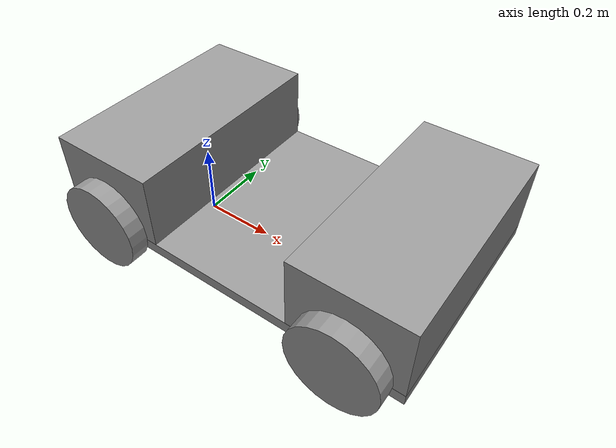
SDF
<?xml version='1.0'?>
<sdf version='1.6'>
  <model name='model3'>
    <link name='link_1'>
      <inertial>
        <mass>1</mass>
        <inertia>
          <ixx>0.166667</ixx>
          <ixy>0</ixy>
          <ixz>0</ixz>
          <iyy>0.166667</iyy>
          <iyz>0</iyz>
          <izz>0.166667</izz>
        </inertia>
        <pose frame=''>0 0 0 0 -0 0</pose>
      </inertial>
      <pose frame=''>0.285648 0.004706 0.118273 0 -0 0</pose>
      <gravity>1</gravity>
      <self_collide>0</self_collide>
      <kinematic>0</kinematic>
      <enable_wind>0</enable_wind>
      <visual name='visual'>
        <pose frame=''>0 0 0 0 -0 0</pose>
        <geometry>
          <box>
            <size>1 0.6 0.03</size>
          </box>
        </geometry>
        <material>
          <lighting>1</lighting>
          <script>
            <uri>file://media/materials/scripts/gazebo.material</uri>
            <name>Gazebo/Grey</name>
          </script>
          <shader type='vertex'>
            <normal_map>__default__</normal_map>
          </shader>
          <ambient>0.3 0.3 0.3 1</ambient>
          <diffuse>0.7 0.7 0.7 1</diffuse>
          <specular>0.01 0.01 0.01 1</specular>
          <emissive>0 0 0 1</emissive>
        </material>
        <transparency>0</transparency>
        <cast_shadows>1</cast_shadows>
      </visual>
      <collision name='collision'>
        <laser_retro>0</laser_retro>
        <max_contacts>10</max_contacts>
        <pose frame=''>0 0 0 0 -0 0</pose>
        <geometry>
          <box>
            <size>1 0.6 0.03</size>
          </box>
        </geometry>
        <surface>
          <friction>
            <ode>
              <mu>1</mu>
              <mu2>1</mu2>
              <fdir1>0 0 0</fdir1>
              <slip1>0</slip1>
              <slip2>0</slip2>
            </ode>
            <torsional>
              <coefficient>1</coefficient>
              <patch_radius>0</patch_radius>
              <surface_radius>0</surface_radius>
              <use_patch_radius>1</use_patch_radius>
              <ode>
                <slip>0</slip>
              </ode>
            </torsional>
          </friction>
          <bounce>
            <restitution_coefficient>0</restitution_coefficient>
            <threshold>1e+06</threshold>
          </bounce>
          <contact>
            <collide_without_contact>0</collide_without_contact>
            <collide_without_contact_bitmask>1</collide_without_contact_bitmask>
            <collide_bitmask>1</collide_bitmask>
            <ode>
              <soft_cfm>0</soft_cfm>
              <soft_erp>0.2</soft_erp>
              <kp>1e+13</kp>
              <kd>1</kd>
              <max_vel>0.01</max_vel>
              <min_depth>0</min_depth>
            </ode>
            <bullet>
              <split_impulse>1</split_impulse>
              <split_impulse_penetration_threshold>-0.01</split_impulse_penetration_threshold>
              <soft_cfm>0</soft_cfm>
              <soft_erp>0.2</soft_erp>
              <kp>1e+13</kp>
              <kd>1</kd>
            </bullet>
          </contact>
        </surface>
      </collision>
    </link>
    <link name='link_2'>
      <inertial>
        <mass>1</mass>
        <inertia>
          <ixx>0.166667</ixx>
          <ixy>0</ixy>
          <ixz>0</ixz>
          <iyy>0.166667</iyy>
          <iyz>0</iyz>
          <izz>0.166667</izz>
        </inertia>
        <pose frame=''>0 0 0 0 -0 0</pose>
      </inertial>
      <pose frame=''>-0.064352 0.004706 0.233273 0 -0 0</pose>
      <gravity>1</gravity>
      <self_collide>0</self_collide>
      <kinematic>0</kinematic>
      <enable_wind>0</enable_wind>
      <visual name='visual'>
        <pose frame=''>0 0 0 0 -0 0</pose>
        <geometry>
          <box>
            <size>0.3 0.6 0.2</size>
          </box>
        </geometry>
        <material>
          <lighting>1</lighting>
          <script>
            <uri>file://media/materials/scripts/gazebo.material</uri>
            <name>Gazebo/Grey</name>
          </script>
          <shader type='vertex'>
            <normal_map>__default__</normal_map>
          </shader>
          <ambient>0.3 0.3 0.3 1</ambient>
          <diffuse>0.7 0.7 0.7 1</diffuse>
          <specular>0.01 0.01 0.01 1</specular>
          <emissive>0 0 0 1</emissive>
        </material>
        <transparency>0</transparency>
        <cast_shadows>1</cast_shadows>
      </visual>
      <collision name='collision'>
        <laser_retro>0</laser_retro>
        <max_contacts>10</max_contacts>
        <pose frame=''>0 0 0 0 -0 0</pose>
        <geometry>
          <box>
            <size>0.3 0.6 0.2</size>
          </box>
        </geometry>
        <surface>
          <friction>
            <ode>
              <mu>1</mu>
              <mu2>1</mu2>
              <fdir1>0 0 0</fdir1>
              <slip1>0</slip1>
              <slip2>0</slip2>
            </ode>
            <torsional>
              <coefficient>1</coefficient>
              <patch_radius>0</patch_radius>
              <surface_radius>0</surface_radius>
              <use_patch_radius>1</use_patch_radius>
              <ode>
                <slip>0</slip>
              </ode>
            </torsional>
          </friction>
          <bounce>
            <restitution_coefficient>0</restitution_coefficient>
            <threshold>1e+06</threshold>
          </bounce>
          <contact>
            <collide_without_contact>0</collide_without_contact>
            <collide_without_contact_bitmask>1</collide_without_contact_bitmask>
            <collide_bitmask>1</collide_bitmask>
            <ode>
              <soft_cfm>0</soft_cfm>
              <soft_erp>0.2</soft_erp>
              <kp>1e+13</kp>
              <kd>1</kd>
              <max_vel>0.01</max_vel>
              <min_depth>0</min_depth>
            </ode>
            <bullet>
              <split_impulse>1</split_impulse>
              <split_impulse_penetration_threshold>-0.01</split_impulse_penetration_threshold>
              <soft_cfm>0</soft_cfm>
              <soft_erp>0.2</soft_erp>
              <kp>1e+13</kp>
              <kd>1</kd>
            </bullet>
          </contact>
        </surface>
      </collision>
    </link>
    <link name='link_2_clone'>
      <inertial>
        <mass>1</mass>
        <inertia>
          <ixx>0.166667</ixx>
          <ixy>0</ixy>
          <ixz>0</ixz>
          <iyy>0.166667</iyy>
          <iyz>0</iyz>
          <izz>0.166667</izz>
        </inertia>
        <pose frame=''>0 0 0 0 -0 0</pose>
      </inertial>
      <pose frame=''>0.635648 0.004706 0.233273 0 -0 0</pose>
      <gravity>1</gravity>
      <self_collide>0</self_collide>
      <kinematic>0</kinematic>
      <enable_wind>0</enable_wind>
      <visual name='visual'>
        <pose frame=''>0 0 0 0 -0 0</pose>
        <geometry>
          <box>
            <size>0.3 0.6 0.2</size>
          </box>
        </geometry>
        <material>
          <lighting>1</lighting>
          <script>
            <uri>file://media/materials/scripts/gazebo.material</uri>
            <name>Gazebo/Grey</name>
          </script>
          <shader type='vertex'>
            <normal_map>__default__</normal_map>
          </shader>
          <ambient>0.3 0.3 0.3 1</ambient>
          <diffuse>0.7 0.7 0.7 1</diffuse>
          <specular>0.01 0.01 0.01 1</specular>
          <emissive>0 0 0 1</emissive>
        </material>
        <transparency>0</transparency>
        <cast_shadows>1</cast_shadows>
      </visual>
      <collision name='collision'>
        <laser_retro>0</laser_retro>
        <max_contacts>10</max_contacts>
        <pose frame=''>0 0 0 0 -0 0</pose>
        <geometry>
          <box>
            <size>0.3 0.6 0.2</size>
          </box>
        </geometry>
        <surface>
          <friction>
            <ode>
              <mu>1</mu>
              <mu2>1</mu2>
              <fdir1>0 0 0</fdir1>
              <slip1>0</slip1>
              <slip2>0</slip2>
            </ode>
            <torsional>
              <coefficient>1</coefficient>
              <patch_radius>0</patch_radius>
              <surface_radius>0</surface_radius>
              <use_patch_radius>1</use_patch_radius>
              <ode>
                <slip>0</slip>
              </ode>
            </torsional>
          </friction>
          <bounce>
            <restitution_coefficient>0</restitution_coefficient>
            <threshold>1e+06</threshold>
          </bounce>
          <contact>
            <collide_without_contact>0</collide_without_contact>
            <collide_without_contact_bitmask>1</collide_without_contact_bitmask>
            <collide_bitmask>1</collide_bitmask>
            <ode>
              <soft_cfm>0</soft_cfm>
              <soft_erp>0.2</soft_erp>
              <kp>1e+13</kp>
              <kd>1</kd>
              <max_vel>0.01</max_vel>
              <min_depth>0</min_depth>
            </ode>
            <bullet>
              <split_impulse>1</split_impulse>
              <split_impulse_penetration_threshold>-0.01</split_impulse_penetration_threshold>
              <soft_cfm>0</soft_cfm>
              <soft_erp>0.2</soft_erp>
              <kp>1e+13</kp>
              <kd>1</kd>
            </bullet>
          </contact>
        </surface>
      </collision>
    </link>
    <link name='link_3_clone'>
      <inertial>
        <mass>1</mass>
        <inertia>
          <ixx>0.145833</ixx>
          <ixy>0</ixy>
          <ixz>0</ixz>
          <iyy>0.145833</iyy>
          <iyz>0</iyz>
          <izz>0.125</izz>
        </inertia>
        <pose frame=''>0 0 0 0 -0 0</pose>
      </inertial>
      <pose frame=''>-0.064352 -0.320294 0.143273 1.5707 -0 0</pose>
      <gravity>1</gravity>
      <self_collide>0</self_collide>
      <kinematic>0</kinematic>
      <enable_wind>0</enable_wind>
      <visual name='visual'>
        <pose frame=''>0 0 0 0 -0 0</pose>
        <geometry>
          <cylinder>
            <radius>0.12</radius>
            <length>0.05</length>
          </cylinder>
        </geometry>
        <material>
          <lighting>1</lighting>
          <script>
            <uri>file://media/materials/scripts/gazebo.material</uri>
            <name>Gazebo/Grey</name>
          </script>
          <shader type='vertex'>
            <normal_map>__default__</normal_map>
          </shader>
          <ambient>0.3 0.3 0.3 1</ambient>
          <diffuse>0.7 0.7 0.7 1</diffuse>
          <specular>0.01 0.01 0.01 1</specular>
          <emissive>0 0 0 1</emissive>
        </material>
        <transparency>0</transparency>
        <cast_shadows>1</cast_shadows>
      </visual>
      <collision name='collision'>
        <laser_retro>0</laser_retro>
        <max_contacts>10</max_contacts>
        <pose frame=''>0 0 0 0 -0 0</pose>
        <geometry>
          <cylinder>
            <radius>0.12</radius>
            <length>0.05</length>
          </cylinder>
        </geometry>
        <surface>
          <friction>
            <ode>
              <mu>1</mu>
              <mu2>1</mu2>
              <fdir1>0 0 0</fdir1>
              <slip1>0</slip1>
              <slip2>0</slip2>
            </ode>
            <torsional>
              <coefficient>1</coefficient>
              <patch_radius>0</patch_radius>
              <surface_radius>0</surface_radius>
              <use_patch_radius>1</use_patch_radius>
              <ode>
                <slip>0</slip>
              </ode>
            </torsional>
          </friction>
          <bounce>
            <restitution_coefficient>0</restitution_coefficient>
            <threshold>1e+06</threshold>
          </bounce>
          <contact>
            <collide_without_contact>0</collide_without_contact>
            <collide_without_contact_bitmask>1</collide_without_contact_bitmask>
            <collide_bitmask>1</collide_bitmask>
            <ode>
              <soft_cfm>0</soft_cfm>
              <soft_erp>0.2</soft_erp>
              <kp>1e+13</kp>
              <kd>1</kd>
              <max_vel>0.01</max_vel>
              <min_depth>0</min_depth>
            </ode>
            <bullet>
              <split_impulse>1</split_impulse>
              <split_impulse_penetration_threshold>-0.01</split_impulse_penetration_threshold>
              <soft_cfm>0</soft_cfm>
              <soft_erp>0.2</soft_erp>
              <kp>1e+13</kp>
              <kd>1</kd>
            </bullet>
          </contact>
        </surface>
      </collision>
    </link>
    <link name='link_3_clone_0'>
      <inertial>
        <mass>1</mass>
        <inertia>
          <ixx>0.145833</ixx>
          <ixy>0</ixy>
          <ixz>0</ixz>
          <iyy>0.145833</iyy>
          <iyz>0</iyz>
          <izz>0.125</izz>
        </inertia>
        <pose frame=''>0 0 0 0 -0 0</pose>
      </inertial>
      <pose frame=''>0.635648 -0.320294 0.143273 1.5707 -0 0</pose>
      <gravity>1</gravity>
      <self_collide>0</self_collide>
      <kinematic>0</kinematic>
      <enable_wind>0</enable_wind>
      <visual name='visual'>
        <pose frame=''>0 0 0 0 -0 0</pose>
        <geometry>
          <cylinder>
            <radius>0.12</radius>
            <length>0.05</length>
          </cylinder>
        </geometry>
        <material>
          <lighting>1</lighting>
          <script>
            <uri>file://media/materials/scripts/gazebo.material</uri>
            <name>Gazebo/Grey</name>
          </script>
          <shader type='vertex'>
            <normal_map>__default__</normal_map>
          </shader>
          <ambient>0.3 0.3 0.3 1</ambient>
          <diffuse>0.7 0.7 0.7 1</diffuse>
          <specular>0.01 0.01 0.01 1</specular>
          <emissive>0 0 0 1</emissive>
        </material>
        <transparency>0</transparency>
        <cast_shadows>1</cast_shadows>
      </visual>
      <collision name='collision'>
        <laser_retro>0</laser_retro>
        <max_contacts>10</max_contacts>
        <pose frame=''>0 0 0 0 -0 0</pose>
        <geometry>
          <cylinder>
            <radius>0.12</radius>
            <length>0.05</length>
          </cylinder>
        </geometry>
        <surface>
          <friction>
            <ode>
              <mu>1</mu>
              <mu2>1</mu2>
              <fdir1>0 0 0</fdir1>
              <slip1>0</slip1>
              <slip2>0</slip2>
            </ode>
            <torsional>
              <coefficient>1</coefficient>
              <patch_radius>0</patch_radius>
              <surface_radius>0</surface_radius>
              <use_patch_radius>1</use_patch_radius>
              <ode>
                <slip>0</slip>
              </ode>
            </torsional>
          </friction>
          <bounce>
            <restitution_coefficient>0</restitution_coefficient>
            <threshold>1e+06</threshold>
          </bounce>
          <contact>
            <collide_without_contact>0</collide_without_contact>
            <collide_without_contact_bitmask>1</collide_without_contact_bitmask>
            <collide_bitmask>1</collide_bitmask>
            <ode>
              <soft_cfm>0</soft_cfm>
              <soft_erp>0.2</soft_erp>
              <kp>1e+13</kp>
              <kd>1</kd>
              <max_vel>0.01</max_vel>
              <min_depth>0</min_depth>
            </ode>
            <bullet>
              <split_impulse>1</split_impulse>
              <split_impulse_penetration_threshold>-0.01</split_impulse_penetration_threshold>
              <soft_cfm>0</soft_cfm>
              <soft_erp>0.2</soft_erp>
              <kp>1e+13</kp>
              <kd>1</kd>
            </bullet>
          </contact>
        </surface>
      </collision>
    </link>
    <link name='link_3_clone_1'>
      <inertial>
        <mass>1</mass>
        <inertia>
          <ixx>0.145833</ixx>
          <ixy>0</ixy>
          <ixz>0</ixz>
          <iyy>0.145833</iyy>
          <iyz>0</iyz>
          <izz>0.125</izz>
        </inertia>
        <pose frame=''>0 0 0 0 -0 0</pose>
      </inertial>
      <pose frame=''>0.635648 0.329706 0.143273 1.5707 -0 0</pose>
      <gravity>1</gravity>
      <self_collide>0</self_collide>
      <kinematic>0</kinematic>
      <enable_wind>0</enable_wind>
      <visual name='visual'>
        <pose frame=''>0 0 0 0 -0 0</pose>
        <geometry>
          <cylinder>
            <radius>0.12</radius>
            <length>0.05</length>
          </cylinder>
        </geometry>
        <material>
          <lighting>1</lighting>
          <script>
            <uri>file://media/materials/scripts/gazebo.material</uri>
            <name>Gazebo/Grey</name>
          </script>
          <shader type='vertex'>
            <normal_map>__default__</normal_map>
          </shader>
          <ambient>0.3 0.3 0.3 1</ambient>
          <diffuse>0.7 0.7 0.7 1</diffuse>
          <specular>0.01 0.01 0.01 1</specular>
          <emissive>0 0 0 1</emissive>
        </material>
        <transparency>0</transparency>
        <cast_shadows>1</cast_shadows>
      </visual>
      <collision name='collision'>
        <laser_retro>0</laser_retro>
        <max_contacts>10</max_contacts>
        <pose frame=''>0 0 0 0 -0 0</pose>
        <geometry>
          <cylinder>
            <radius>0.12</radius>
            <length>0.05</length>
          </cylinder>
        </geometry>
        <surface>
          <friction>
            <ode>
              <mu>1</mu>
              <mu2>1</mu2>
              <fdir1>0 0 0</fdir1>
              <slip1>0</slip1>
              <slip2>0</slip2>
            </ode>
            <torsional>
              <coefficient>1</coefficient>
              <patch_radius>0</patch_radius>
              <surface_radius>0</surface_radius>
              <use_patch_radius>1</use_patch_radius>
              <ode>
                <slip>0</slip>
              </ode>
            </torsional>
          </friction>
          <bounce>
            <restitution_coefficient>0</restitution_coefficient>
            <threshold>1e+06</threshold>
          </bounce>
          <contact>
            <collide_without_contact>0</collide_without_contact>
            <collide_without_contact_bitmask>1</collide_without_contact_bitmask>
            <collide_bitmask>1</collide_bitmask>
            <ode>
              <soft_cfm>0</soft_cfm>
              <soft_erp>0.2</soft_erp>
              <kp>1e+13</kp>
              <kd>1</kd>
              <max_vel>0.01</max_vel>
              <min_depth>0</min_depth>
            </ode>
            <bullet>
              <split_impulse>1</split_impulse>
              <split_impulse_penetration_threshold>-0.01</split_impulse_penetration_threshold>
              <soft_cfm>0</soft_cfm>
              <soft_erp>0.2</soft_erp>
              <kp>1e+13</kp>
              <kd>1</kd>
            </bullet>
          </contact>
        </surface>
      </collision>
    </link>
    <link name='link_3_clone_2'>
      <inertial>
        <mass>1</mass>
        <inertia>
          <ixx>0.145833</ixx>
          <ixy>0</ixy>
          <ixz>0</ixz>
          <iyy>0.145833</iyy>
          <iyz>0</iyz>
          <izz>0.125</izz>
        </inertia>
        <pose frame=''>0 0 0 0 -0 0</pose>
      </inertial>
      <pose frame=''>-0.064352 0.329706 0.143273 1.5707 -0 0</pose>
      <gravity>1</gravity>
      <self_collide>0</self_collide>
      <kinematic>0</kinematic>
      <enable_wind>0</enable_wind>
      <visual name='visual'>
        <pose frame=''>0 0 0 0 -0 0</pose>
        <geometry>
          <cylinder>
            <radius>0.12</radius>
            <length>0.05</length>
          </cylinder>
        </geometry>
        <material>
          <lighting>1</lighting>
          <script>
            <uri>file://media/materials/scripts/gazebo.material</uri>
            <name>Gazebo/Grey</name>
          </script>
          <shader type='vertex'>
            <normal_map>__default__</normal_map>
          </shader>
          <ambient>0.3 0.3 0.3 1</ambient>
          <diffuse>0.7 0.7 0.7 1</diffuse>
          <specular>0.01 0.01 0.01 1</specular>
          <emissive>0 0 0 1</emissive>
        </material>
        <transparency>0</transparency>
        <cast_shadows>1</cast_shadows>
      </visual>
      <collision name='collision'>
        <laser_retro>0</laser_retro>
        <max_contacts>10</max_contacts>
        <pose frame=''>0 0 0 0 -0 0</pose>
        <geometry>
          <cylinder>
            <radius>0.12</radius>
            <length>0.05</length>
          </cylinder>
        </geometry>
        <surface>
          <friction>
            <ode>
              <mu>1</mu>
              <mu2>1</mu2>
              <fdir1>0 0 0</fdir1>
              <slip1>0</slip1>
              <slip2>0</slip2>
            </ode>
            <torsional>
              <coefficient>1</coefficient>
              <patch_radius>0</patch_radius>
              <surface_radius>0</surface_radius>
              <use_patch_radius>1</use_patch_radius>
              <ode>
                <slip>0</slip>
              </ode>
            </torsional>
          </friction>
          <bounce>
            <restitution_coefficient>0</restitution_coefficient>
            <threshold>1e+06</threshold>
          </bounce>
          <contact>
            <collide_without_contact>0</collide_without_contact>
            <collide_without_contact_bitmask>1</collide_without_contact_bitmask>
            <collide_bitmask>1</collide_bitmask>
            <ode>
              <soft_cfm>0</soft_cfm>
              <soft_erp>0.2</soft_erp>
              <kp>1e+13</kp>
              <kd>1</kd>
              <max_vel>0.01</max_vel>
              <min_depth>0</min_depth>
            </ode>
            <bullet>
              <split_impulse>1</split_impulse>
              <split_impulse_penetration_threshold>-0.01</split_impulse_penetration_threshold>
              <soft_cfm>0</soft_cfm>
              <soft_erp>0.2</soft_erp>
              <kp>1e+13</kp>
              <kd>1</kd>
            </bullet>
          </contact>
        </surface>
      </collision>
    </link>
    <joint name='link_1_JOINT_0' type='fixed'>
      <parent>link_1</parent>
      <child>link_2</child>
      <pose frame=''>0 0 0 0 -0 0</pose>
      <physics>
        <ode>
          <limit>
            <cfm>0</cfm>
            <erp>0.2</erp>
          </limit>
          <suspension>
            <cfm>0</cfm>
            <erp>0.2</erp>
          </suspension>
        </ode>
      </physics>
    </joint>
    <joint name='link_1_JOINT_1' type='fixed'>
      <parent>link_1</parent>
      <child>link_2_clone</child>
      <pose frame=''>0 0 0 0 -0 0</pose>
      <physics>
        <ode>
          <limit>
            <cfm>0</cfm>
            <erp>0.2</erp>
          </limit>
          <suspension>
            <cfm>0</cfm>
            <erp>0.2</erp>
          </suspension>
        </ode>
      </physics>
    </joint>
    <joint name='link_1_JOINT_2' type='revolute'>
      <parent>link_1</parent>
      <child>link_3_clone</child>
      <pose frame=''>0 0 0 0 -0 0</pose>
      <axis>
        <xyz>-0 -0 -1</xyz>
        <use_parent_model_frame>0</use_parent_model_frame>
        <limit>
          <lower>-1.79769e+308</lower>
          <upper>1.79769e+308</upper>
          <effort>-1</effort>
          <velocity>-1</velocity>
        </limit>
        <dynamics>
          <spring_reference>0</spring_reference>
          <spring_stiffness>0</spring_stiffness>
          <damping>0</damping>
        </dynamics>
      </axis>
      <physics>
        <ode>
          <limit>
            <cfm>0</cfm>
            <erp>0.2</erp>
          </limit>
          <suspension>
            <cfm>0</cfm>
            <erp>0.2</erp>
          </suspension>
        </ode>
      </physics>
    </joint>
    <joint name='link_1_JOINT_3' type='revolute'>
      <parent>link_1</parent>
      <child>link_3_clone_0</child>
      <pose frame=''>0 0 0 0 -0 0</pose>
      <axis>
        <xyz>-0 -0 -1</xyz>
        <use_parent_model_frame>0</use_parent_model_frame>
        <limit>
          <lower>-1.79769e+308</lower>
          <upper>1.79769e+308</upper>
          <effort>-1</effort>
          <velocity>-1</velocity>
        </limit>
        <dynamics>
          <spring_reference>0</spring_reference>
          <spring_stiffness>0</spring_stiffness>
          <damping>0</damping>
        </dynamics>
      </axis>
      <physics>
        <ode>
          <limit>
            <cfm>0</cfm>
            <erp>0.2</erp>
          </limit>
          <suspension>
            <cfm>0</cfm>
            <erp>0.2</erp>
          </suspension>
        </ode>
      </physics>
    </joint>
    <joint name='link_1_JOINT_4' type='revolute'>
      <parent>link_1</parent>
      <child>link_3_clone_2</child>
      <pose frame=''>0 0 0 0 -0 0</pose>
      <axis>
        <xyz>0 0 1</xyz>
        <use_parent_model_frame>0</use_parent_model_frame>
        <limit>
          <lower>-1.79769e+308</lower>
          <upper>1.79769e+308</upper>
          <effort>-1</effort>
          <velocity>-1</velocity>
        </limit>
        <dynamics>
          <spring_reference>0</spring_reference>
          <spring_stiffness>0</spring_stiffness>
          <damping>0</damping>
        </dynamics>
      </axis>
      <physics>
        <ode>
          <limit>
            <cfm>0</cfm>
            <erp>0.2</erp>
          </limit>
          <suspension>
            <cfm>0</cfm>
            <erp>0.2</erp>
          </suspension>
        </ode>
      </physics>
    </joint>
    <joint name='link_1_JOINT_5' type='revolute'>
      <parent>link_1</parent>
      <child>link_3_clone_1</child>
      <pose frame=''>0 0 0 0 -0 0</pose>
      <axis>
        <xyz>0 0 1</xyz>
        <use_parent_model_frame>0</use_parent_model_frame>
        <limit>
          <lower>-1.79769e+308</lower>
          <upper>1.79769e+308</upper>
          <effort>-1</effort>
          <velocity>-1</velocity>
        </limit>
        <dynamics>
          <spring_reference>0</spring_reference>
          <spring_stiffness>0</spring_stiffness>
          <damping>0</damping>
        </dynamics>
      </axis>
      <physics>
        <ode>
          <limit>
            <cfm>0</cfm>
            <erp>0.2</erp>
          </limit>
          <suspension>
            <cfm>0</cfm>
            <erp>0.2</erp>
          </suspension>
        </ode>
      </physics>
    </joint>
    <static>0</static>
    <allow_auto_disable>1</allow_auto_disable>
  </model>
</sdf>
